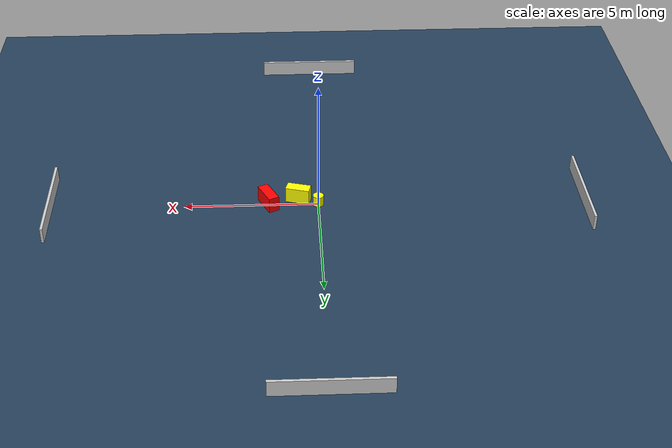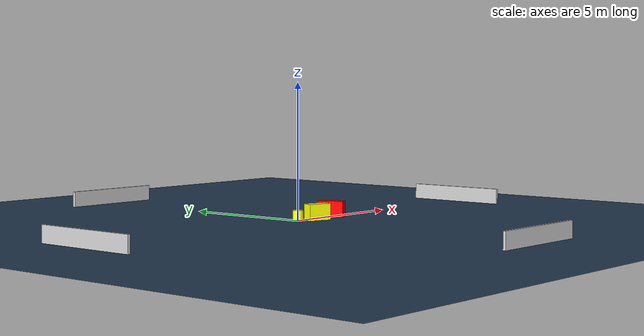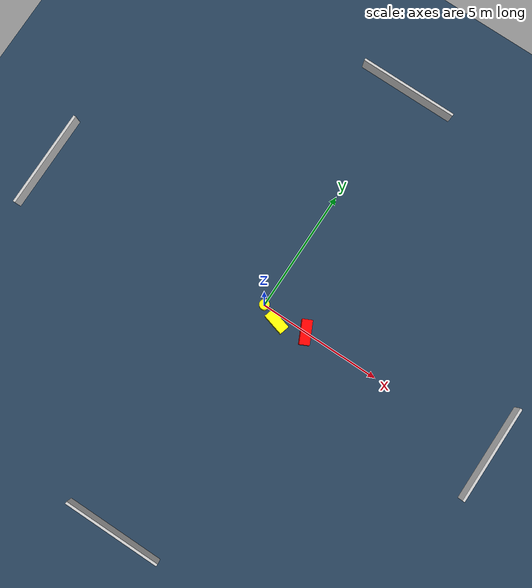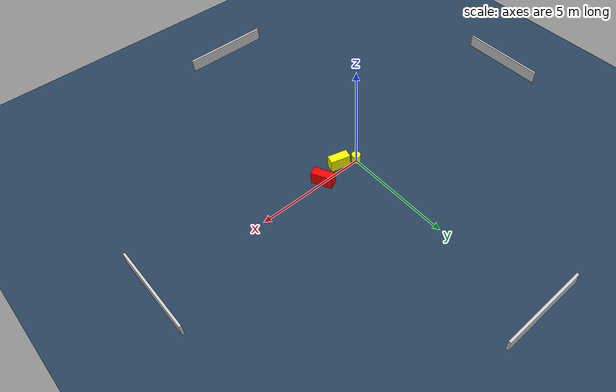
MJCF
<?xml version="1.0" ?>
<mujoco model="generated_environment">
  <option timestep="0.01" integrator="RK4" cone="elliptic"/>
  <default>
    <geom density="1"/>
  </default>
  <asset>
    <texture builtin="gradient" height="3072" name="skybox" rgb1="0.3 0.5 0.7" rgb2="0 0 0" type="skybox" width="512"/>
    <texture builtin="checker" height="300" name="groundplane" rgb1="0.2 0.3 0.4" rgb2="0.1 0.2 0.3" type="2d" width="300"/>
    <material name="groundplane" reflectance="0.2" texrepeat="5 5" texture="groundplane"/>
  </asset>
  <worldbody>
    <light dir="0 0 -1" directional="true" pos="0 0 1.5"/>
    <geom condim="3" friction="0.5 0.005 0.001" material="groundplane" name="floor" pos="0 0 0" size="0 0 0.05" type="plane"/>
    <body name="walls">
      <geom name="wall_1" condim="4" pos="-10.0 0.0 0.3" rgba="0.800000011920929 0.800000011920929 0.800000011920929 1.0" size="0.05 2.0 0.3" type="box"/>
      <geom name="wall_2" condim="4" pos="10.0 0.0 0.3" rgba="0.800000011920929 0.800000011920929 0.800000011920929 1.0" size="0.05 2.0 0.3" type="box"/>
      <geom name="wall_3" condim="4" pos="0.0 -10.0 0.3" rgba="0.800000011920929 0.800000011920929 0.800000011920929 1.0" size="2.0 0.05 0.3" type="box"/>
      <geom name="wall_4" condim="4" pos="0.0 10.0 0.3" rgba="0.800000011920929 0.800000011920929 0.800000011920929 1.0" size="2.0 0.05 0.3" type="box"/>
    </body>
    <body name="robot">
      <joint name="joint_x" type="slide" pos="0 0 0" axis="1 0 0"/>
      <joint name="joint_y" type="slide" pos="0 0 0" axis="0 1 0"/>
      <geom name="robot" type="cylinder" pos="0.0 0.0 0.2" size="0.2 0.2 0.0" mass="5.0" friction="1.0 0.005 0.0001" condim="4" rgba="1.0 1.0 0.0 1.0"/>
    </body>
    <body name="obstacle_1_movable">
      <geom name="obstacle_1_movable" condim="4" pos="0.7409063264547884 -0.2871094242012785 0.3" euler="0 0 254.51640815983532" friction="0.0 0.005 0.001" rgba="1.0 1.0 0.0 1.0" size="0.20423961540624325 0.4472599854293664 0.3" type="box" mass="0.1"/>
      <joint type="free"/>
    </body>
    <body name="obstacle_2_static">
      <geom name="obstacle_2_static" condim="4" pos="1.867226097881961 -0.018564676113706748 0.3" euler="0 0 295.7290912559361" friction="0.0 0.005 0.001" rgba="1.0 0.0 0.0 1.0" size="0.4800023446211198 0.20135193904212545 0.3" type="box"/>
    </body>
  </worldbody>
  <actuator>
    <motor name="actuator_x" joint="joint_x" gear="1" ctrlrange="-1 1"/>
    <motor name="actuator_y" joint="joint_y" gear="1" ctrlrange="-1 1"/>
  </actuator>
</mujoco>
